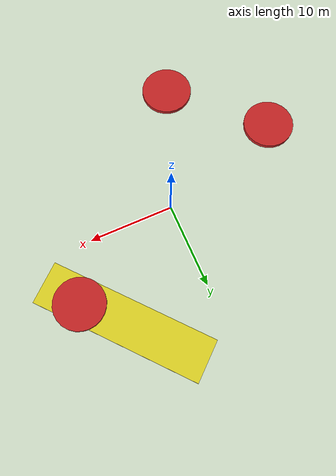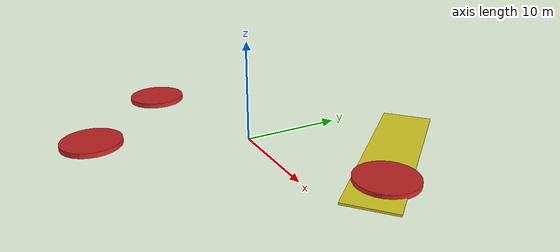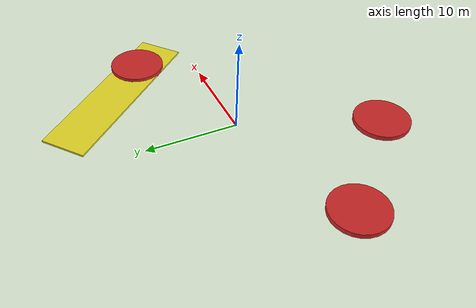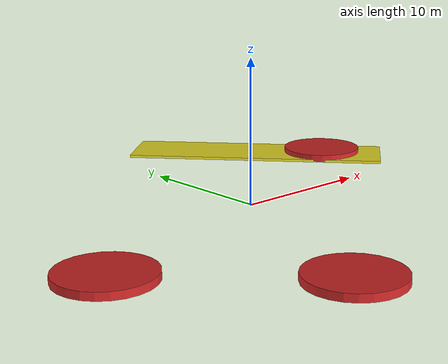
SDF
<?xml version='1.0'?>
<sdf version='1.7'>
  <model name='area_of_interest'>
    <link name='link_0_clone'>
      <inertial>
        <mass>7.79213</mass>
        <inertia>
          <ixx>41.3845</ixx>
          <ixy>0</ixy>
          <ixz>0</ixz>
          <iyy>5.86851</iyy>
          <iyz>0</iyz>
          <izz>47.1142</izz>
        </inertia>
        <pose>0 0 0 0 -0 0</pose>
      </inertial>
      <pose>10 10 0.2 0 -0 0.712554</pose>
      <gravity>1</gravity>
      <self_collide>0</self_collide>
      <kinematic>0</kinematic>
      <enable_wind>0</enable_wind>
      <visual name='visual'>
        <pose>0 0 0 0 -0 0</pose>
        <geometry>
          <box>
            <size>5 20 0.2</size>
          </box>
        </geometry>
        <material>
          <lighting>1</lighting>
          <script>
            <uri>file://media/materials/scripts/gazebo.material</uri>
            <name>Gazebo/Yellow</name>
          </script>
          <shader type='pixel'>
            <normal_map>__default__</normal_map>
          </shader>
          <ambient>1 1 0 1</ambient>
          <diffuse>1 1 0 1</diffuse>
          <emissive>0 0 0 1</emissive>
        </material>
        <transparency>0</transparency>
        <cast_shadows>1</cast_shadows>
      </visual>
      <collision name='collision'>
        <laser_retro>0</laser_retro>
        <max_contacts>10</max_contacts>
        <pose>0 0 0 0 -0 0</pose>
        <geometry>
          <box>
            <size>5 20 0.326897</size>
          </box>
        </geometry>
        <surface>
          <friction>
            <ode>
              <mu>1</mu>
              <mu2>1</mu2>
              <fdir1>0 0 0</fdir1>
              <slip1>0</slip1>
              <slip2>0</slip2>
            </ode>
            <torsional>
              <coefficient>1</coefficient>
              <patch_radius>0</patch_radius>
              <surface_radius>0</surface_radius>
              <use_patch_radius>1</use_patch_radius>
              <ode>
                <slip>0</slip>
              </ode>
            </torsional>
          </friction>
          <bounce>
            <restitution_coefficient>0</restitution_coefficient>
            <threshold>1e+06</threshold>
          </bounce>
          <contact>
            <collide_without_contact>0</collide_without_contact>
            <collide_without_contact_bitmask>1</collide_without_contact_bitmask>
            <collide_bitmask>1</collide_bitmask>
            <ode>
              <soft_cfm>0</soft_cfm>
              <soft_erp>0.2</soft_erp>
              <kp>1e+13</kp>
              <kd>1</kd>
              <max_vel>0.01</max_vel>
              <min_depth>0</min_depth>
            </ode>
            <bullet>
              <split_impulse>1</split_impulse>
              <split_impulse_penetration_threshold>-0.01</split_impulse_penetration_threshold>
              <soft_cfm>0</soft_cfm>
              <soft_erp>0.2</soft_erp>
              <kp>1e+13</kp>
              <kd>1</kd>
            </bullet>
          </contact>
        </surface>
      </collision>
    </link>
    <link name='link_2'>
      <inertial>
        <mass>3.13023</mass>
        <inertia>
          <ixx>0.873247</ixx>
          <ixy>0</ixy>
          <ixz>0</ixz>
          <iyy>0.873247</iyy>
          <iyz>0</iyz>
          <izz>1.22479</izz>
        </inertia>
        <pose>0 0 0 0 -0 0</pose>
      </inertial>
      <pose>-5.6808 -14.1591 0.420021 0 -0 0</pose>
      <gravity>1</gravity>
      <self_collide>0</self_collide>
      <kinematic>0</kinematic>
      <enable_wind>0</enable_wind>
      <visual name='visual'>
        <pose>0 0 0 0 -0 0</pose>
        <geometry>
          <cylinder>
            <radius>3</radius>
            <length>0.5</length>
          </cylinder>
        </geometry>
        <material>
          <lighting>1</lighting>
          <script>
            <uri>file://media/materials/scripts/gazebo.material</uri>
            <name>Gazebo/Red</name>
          </script>
          <shader type='pixel'>
            <normal_map>__default__</normal_map>
          </shader>
          <ambient>0.3 0.3 0.3 1</ambient>
          <diffuse>0.7 0.7 0.7 1</diffuse>
          <specular>0.01 0.01 0.01 1</specular>
          <emissive>0 0 0 1</emissive>
        </material>
        <transparency>0</transparency>
        <cast_shadows>1</cast_shadows>
      </visual>
      <collision name='collision'>
        <laser_retro>0</laser_retro>
        <max_contacts>10</max_contacts>
        <pose>0 0 0 0 -0 0</pose>
        <geometry>
          <cylinder>
            <radius>3</radius>
            <length>0.5</length>
          </cylinder>
        </geometry>
        <surface>
          <friction>
            <ode>
              <mu>1</mu>
              <mu2>1</mu2>
              <fdir1>0 0 0</fdir1>
              <slip1>0</slip1>
              <slip2>0</slip2>
            </ode>
            <torsional>
              <coefficient>1</coefficient>
              <patch_radius>0</patch_radius>
              <surface_radius>0</surface_radius>
              <use_patch_radius>1</use_patch_radius>
              <ode>
                <slip>0</slip>
              </ode>
            </torsional>
          </friction>
          <bounce>
            <restitution_coefficient>0</restitution_coefficient>
            <threshold>1e+06</threshold>
          </bounce>
          <contact>
            <collide_without_contact>0</collide_without_contact>
            <collide_without_contact_bitmask>1</collide_without_contact_bitmask>
            <collide_bitmask>1</collide_bitmask>
            <ode>
              <soft_cfm>0</soft_cfm>
              <soft_erp>0.2</soft_erp>
              <kp>1e+13</kp>
              <kd>1</kd>
              <max_vel>0.01</max_vel>
              <min_depth>0</min_depth>
            </ode>
            <bullet>
              <split_impulse>1</split_impulse>
              <split_impulse_penetration_threshold>-0.01</split_impulse_penetration_threshold>
              <soft_cfm>0</soft_cfm>
              <soft_erp>0.2</soft_erp>
              <kp>1e+13</kp>
              <kd>1</kd>
            </bullet>
          </contact>
        </surface>
      </collision>
    </link>
    <link name='link_2_clone'>
      <inertial>
        <mass>3.13023</mass>
        <inertia>
          <ixx>0.873247</ixx>
          <ixy>0</ixy>
          <ixz>0</ixz>
          <iyy>0.873247</iyy>
          <iyz>0</iyz>
          <izz>1.22479</izz>
        </inertia>
        <pose>0 0 0 0 -0 0</pose>
      </inertial>
      <pose>-15.15 -4.92673 0.420021 0 -0 0</pose>
      <gravity>1</gravity>
      <self_collide>0</self_collide>
      <kinematic>0</kinematic>
      <enable_wind>0</enable_wind>
      <visual name='visual'>
        <pose>0 0 0 0 -0 0</pose>
        <geometry>
          <cylinder>
            <radius>3</radius>
            <length>0.5</length>
          </cylinder>
        </geometry>
        <material>
          <lighting>1</lighting>
          <script>
            <uri>file://media/materials/scripts/gazebo.material</uri>
            <name>Gazebo/Red</name>
          </script>
          <shader type='pixel'>
            <normal_map>__default__</normal_map>
          </shader>
          <ambient>0.3 0.3 0.3 1</ambient>
          <diffuse>0.7 0.7 0.7 1</diffuse>
          <specular>0.01 0.01 0.01 1</specular>
          <emissive>0 0 0 1</emissive>
        </material>
        <transparency>0</transparency>
        <cast_shadows>1</cast_shadows>
      </visual>
      <collision name='collision'>
        <laser_retro>0</laser_retro>
        <max_contacts>10</max_contacts>
        <pose>0 0 0 0 -0 0</pose>
        <geometry>
          <cylinder>
            <radius>3</radius>
            <length>0.5</length>
          </cylinder>
        </geometry>
        <surface>
          <friction>
            <ode>
              <mu>1</mu>
              <mu2>1</mu2>
              <fdir1>0 0 0</fdir1>
              <slip1>0</slip1>
              <slip2>0</slip2>
            </ode>
            <torsional>
              <coefficient>1</coefficient>
              <patch_radius>0</patch_radius>
              <surface_radius>0</surface_radius>
              <use_patch_radius>1</use_patch_radius>
              <ode>
                <slip>0</slip>
              </ode>
            </torsional>
          </friction>
          <bounce>
            <restitution_coefficient>0</restitution_coefficient>
            <threshold>1e+06</threshold>
          </bounce>
          <contact>
            <collide_without_contact>0</collide_without_contact>
            <collide_without_contact_bitmask>1</collide_without_contact_bitmask>
            <collide_bitmask>1</collide_bitmask>
            <ode>
              <soft_cfm>0</soft_cfm>
              <soft_erp>0.2</soft_erp>
              <kp>1e+13</kp>
              <kd>1</kd>
              <max_vel>0.01</max_vel>
              <min_depth>0</min_depth>
            </ode>
            <bullet>
              <split_impulse>1</split_impulse>
              <split_impulse_penetration_threshold>-0.01</split_impulse_penetration_threshold>
              <soft_cfm>0</soft_cfm>
              <soft_erp>0.2</soft_erp>
              <kp>1e+13</kp>
              <kd>1</kd>
            </bullet>
          </contact>
        </surface>
      </collision>
    </link>
    <link name='link_2_clone_0'>
      <inertial>
        <mass>3.13023</mass>
        <inertia>
          <ixx>0.873247</ixx>
          <ixy>0</ixy>
          <ixz>0</ixz>
          <iyy>0.873247</iyy>
          <iyz>0</iyz>
          <izz>1.22479</izz>
        </inertia>
        <pose>0 0 0 0 -0 0</pose>
      </inertial>
      <pose>13.763 6.33434 0.420021 0 -0 0</pose>
      <gravity>1</gravity>
      <self_collide>0</self_collide>
      <kinematic>0</kinematic>
      <enable_wind>0</enable_wind>
      <visual name='visual'>
        <pose>0 0 0 0 -0 0</pose>
        <geometry>
          <cylinder>
            <radius>3</radius>
            <length>0.5</length>
          </cylinder>
        </geometry>
        <material>
          <lighting>1</lighting>
          <script>
            <uri>file://media/materials/scripts/gazebo.material</uri>
            <name>Gazebo/Red</name>
          </script>
          <shader type='pixel'>
            <normal_map>__default__</normal_map>
          </shader>
          <ambient>0.3 0.3 0.3 1</ambient>
          <diffuse>0.7 0.7 0.7 1</diffuse>
          <specular>0.01 0.01 0.01 1</specular>
          <emissive>0 0 0 1</emissive>
        </material>
        <transparency>0</transparency>
        <cast_shadows>1</cast_shadows>
      </visual>
      <collision name='collision'>
        <laser_retro>0</laser_retro>
        <max_contacts>10</max_contacts>
        <pose>0 0 0 0 -0 0</pose>
        <geometry>
          <cylinder>
            <radius>3</radius>
            <length>0.5</length>
          </cylinder>
        </geometry>
        <surface>
          <friction>
            <ode>
              <mu>1</mu>
              <mu2>1</mu2>
              <fdir1>0 0 0</fdir1>
              <slip1>0</slip1>
              <slip2>0</slip2>
            </ode>
            <torsional>
              <coefficient>1</coefficient>
              <patch_radius>0</patch_radius>
              <surface_radius>0</surface_radius>
              <use_patch_radius>1</use_patch_radius>
              <ode>
                <slip>0</slip>
              </ode>
            </torsional>
          </friction>
          <bounce>
            <restitution_coefficient>0</restitution_coefficient>
            <threshold>1e+06</threshold>
          </bounce>
          <contact>
            <collide_without_contact>0</collide_without_contact>
            <collide_without_contact_bitmask>1</collide_without_contact_bitmask>
            <collide_bitmask>1</collide_bitmask>
            <ode>
              <soft_cfm>0</soft_cfm>
              <soft_erp>0.2</soft_erp>
              <kp>1e+13</kp>
              <kd>1</kd>
              <max_vel>0.01</max_vel>
              <min_depth>0</min_depth>
            </ode>
            <bullet>
              <split_impulse>1</split_impulse>
              <split_impulse_penetration_threshold>-0.01</split_impulse_penetration_threshold>
              <soft_cfm>0</soft_cfm>
              <soft_erp>0.2</soft_erp>
              <kp>1e+13</kp>
              <kd>1</kd>
            </bullet>
          </contact>
        </surface>
      </collision>
    </link>
    <static>0</static>
    <allow_auto_disable>1</allow_auto_disable>
  </model>
</sdf>
